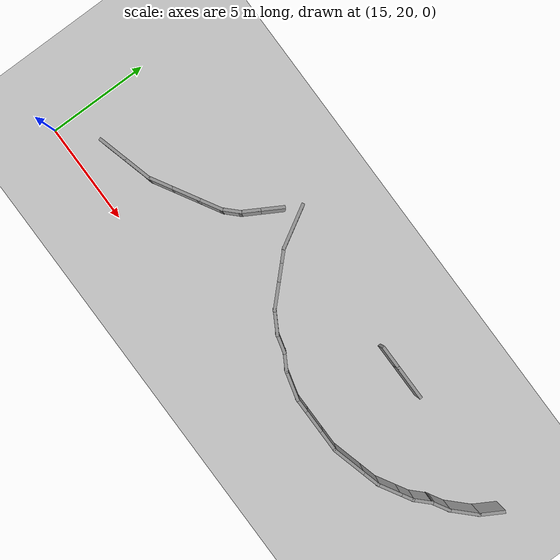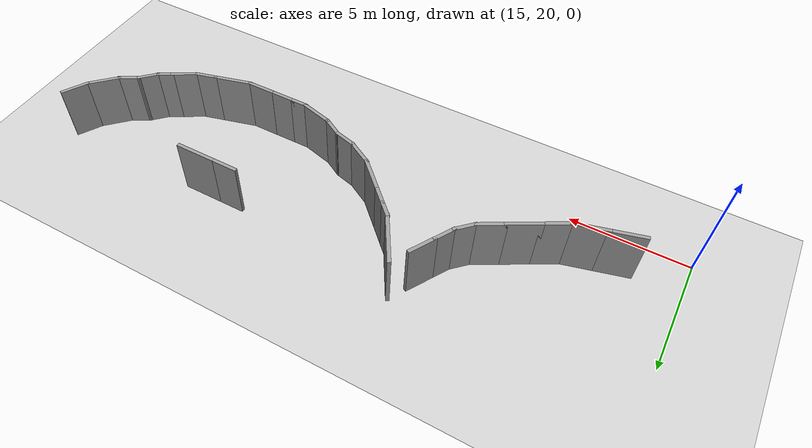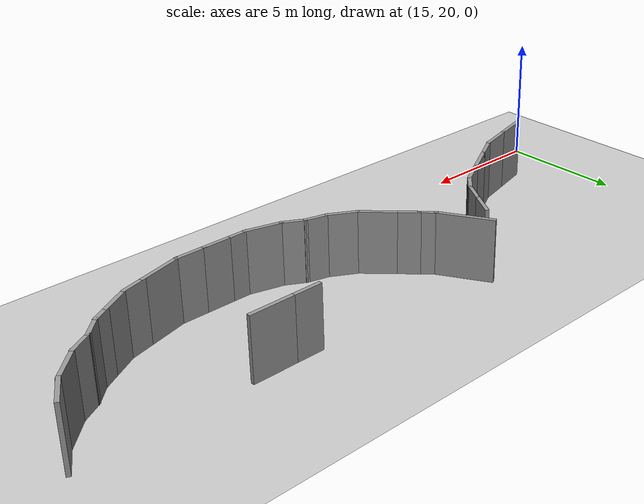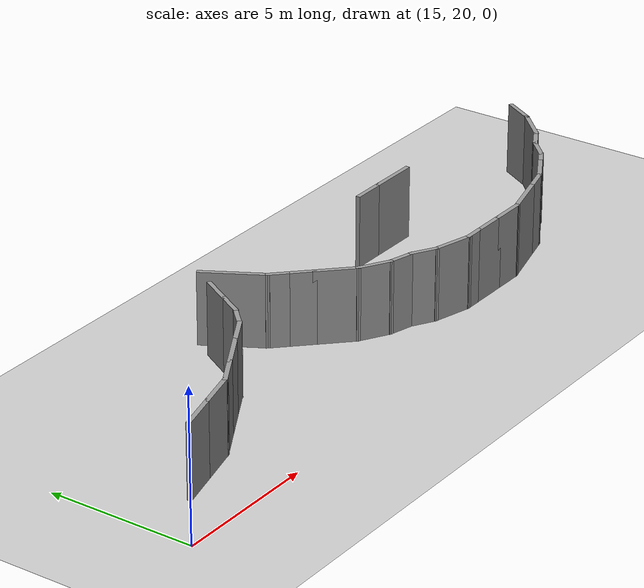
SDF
<sdf version="1.7">
 <world name="default">
  <model name="ground_plane">
   <static>1</static>
   <link name="link">
    <collision name="collision">
     <geometry><plane><normal>0 0 1</normal><size>100 100</size></plane></geometry>
     <surface><friction><ode><mu>100</mu><mu2>50</mu2></ode></friction></surface>
    </collision>
    <visual name="visual">
     <cast_shadows>0</cast_shadows>
     <geometry><plane><normal>0 0 1</normal><size>100 100</size></plane></geometry>
     <material>
      <script><uri>file://media/materials/scripts/gazebo.material</uri><name>Gazebo/Grey</name></script>
     </material>
    </visual>
   </link>
  </model>
  <model name="map4-otto">
   <pose>24.785 39.2572 0 0 -0 0</pose>
   <link name="Wall_170">
    <collision name="Wall_170_Collision">
     <geometry><box><size>1.5 0.15 2.5</size></box></geometry>
     <pose>0 0 1.25 0 -0 0</pose>
    </collision>
    <visual name="Wall_170_Visual">
     <pose>0 0 1.25 0 -0 0</pose>
     <geometry><box><size>1.5 0.15 2.5</size></box></geometry>
     <material>
      <script><uri>file://media/materials/scripts/gazebo.material</uri><name>Gazebo/Grey</name></script>
      <ambient>1 1 1 1</ambient>
     </material>
     <meta><layer>0</layer></meta>
    </visual>
    <pose>-7.12523 -17.5057 0 0 -0 0.261799</pose>
   </link>
   <link name="Wall_171">
    <collision name="Wall_171_Collision">
     <geometry><box><size>1.5 0.15 2.5</size></box></geometry>
     <pose>0 0 1.25 0 -0 0</pose>
    </collision>
    <visual name="Wall_171_Visual">
     <pose>0 0 1.25 0 -0 0</pose>
     <geometry><box><size>1.5 0.15 2.5</size></box></geometry>
     <material>
      <script><uri>file://media/materials/scripts/gazebo.material</uri><name>Gazebo/Grey</name></script>
      <ambient>1 1 1 1</ambient>
     </material>
     <meta><layer>0</layer></meta>
    </visual>
    <pose>-5.82123 -17.1563 0 0 -0 0.261799</pose>
   </link>
   <link name="Wall_172">
    <collision name="Wall_172_Collision">
     <geometry><box><size>1.25 0.15 2.5</size></box></geometry>
     <pose>0 0 1.25 0 -0 0</pose>
    </collision>
    <visual name="Wall_172_Visual">
     <pose>0 0 1.25 0 -0 0</pose>
     <geometry><box><size>1.25 0.15 2.5</size></box></geometry>
     <material>
      <script><uri>file://media/materials/scripts/gazebo.material</uri><name>Gazebo/Grey</name></script>
      <ambient>1 1 1 1</ambient>
     </material>
     <meta><layer>0</layer></meta>
    </visual>
    <pose>-4.69291 -16.7066 0 0 -0 0.523599</pose>
   </link>
   <link name="Wall_173">
    <collision name="Wall_173_Collision">
     <geometry><box><size>1.5 0.15 2.5</size></box></geometry>
     <pose>0 0 1.25 0 -0 0</pose>
    </collision>
    <visual name="Wall_173_Visual">
     <pose>0 0 1.25 0 -0 0</pose>
     <geometry><box><size>1.5 0.15 2.5</size></box></geometry>
     <material>
      <script><uri>file://media/materials/scripts/gazebo.material</uri><name>Gazebo/Grey</name></script>
      <ambient>1 1 1 1</ambient>
     </material>
     <meta><layer>0</layer></meta>
    </visual>
    <pose>-3.63203 -16.0941 0 0 -0 0.523599</pose>
   </link>
   <link name="Wall_174">
    <collision name="Wall_174_Collision">
     <geometry><box><size>1.25 0.15 2.5</size></box></geometry>
     <pose>0 0 1.25 0 -0 0</pose>
    </collision>
    <visual name="Wall_174_Visual">
     <pose>0 0 1.25 0 -0 0</pose>
     <geometry><box><size>1.25 0.15 2.5</size></box></geometry>
     <material>
      <script><uri>file://media/materials/scripts/gazebo.material</uri><name>Gazebo/Grey</name></script>
      <ambient>1 1 1 1</ambient>
     </material>
     <meta><layer>0</layer></meta>
    </visual>
    <pose>-2.57115 -15.4816 0 0 -0 0.523599</pose>
   </link>
   <link name="Wall_175">
    <collision name="Wall_175_Collision">
     <geometry><box><size>1 0.15 2.5</size></box></geometry>
     <pose>0 0 1.25 0 -0 0</pose>
    </collision>
    <visual name="Wall_175_Visual">
     <pose>0 0 1.25 0 -0 0</pose>
     <geometry><box><size>1 0.15 2.5</size></box></geometry>
     <material>
      <script><uri>file://media/materials/scripts/gazebo.material</uri><name>Gazebo/Grey</name></script>
      <ambient>1 1 1 1</ambient>
     </material>
     <meta><layer>0</layer></meta>
    </visual>
    <pose>-1.79432 -14.9061 0 0 -0 0.785398</pose>
   </link>
   <link name="Wall_176">
    <collision name="Wall_176_Collision">
     <geometry><box><size>1 0.15 2.5</size></box></geometry>
     <pose>0 0 1.25 0 -0 0</pose>
    </collision>
    <visual name="Wall_176_Visual">
     <pose>0 0 1.25 0 -0 0</pose>
     <geometry><box><size>1 0.15 2.5</size></box></geometry>
     <material>
      <script><uri>file://media/materials/scripts/gazebo.material</uri><name>Gazebo/Grey</name></script>
      <ambient>1 1 1 1</ambient>
     </material>
     <meta><layer>0</layer></meta>
    </visual>
    <pose>-1.2813 -14.2375 0 0 -0 1.0472</pose>
   </link>
   <link name="Wall_177">
    <collision name="Wall_177_Collision">
     <geometry><box><size>1.25 0.15 2.5</size></box></geometry>
     <pose>0 0 1.25 0 -0 0</pose>
    </collision>
    <visual name="Wall_177_Visual">
     <pose>0 0 1.25 0 -0 0</pose>
     <geometry><box><size>1.25 0.15 2.5</size></box></geometry>
     <material>
      <script><uri>file://media/materials/scripts/gazebo.material</uri><name>Gazebo/Grey</name></script>
      <ambient>1 1 1 1</ambient>
     </material>
     <meta><layer>0</layer></meta>
    </visual>
    <pose>-0.793797 -13.3931 0 0 -0 1.0472</pose>
   </link>
   <link name="Wall_179">
    <collision name="Wall_179_Collision">
     <geometry><box><size>2.25 0.15 2.5</size></box></geometry>
     <pose>0 0 1.25 0 -0 0</pose>
    </collision>
    <visual name="Wall_179_Visual">
     <pose>0 0 1.25 0 -0 0</pose>
     <geometry><box><size>2.25 0.15 2.5</size></box></geometry>
     <material>
      <script><uri>file://media/materials/scripts/gazebo.material</uri><name>Gazebo/Grey</name></script>
      <ambient>1 1 1 1</ambient>
     </material>
     <meta><layer>0</layer></meta>
    </visual>
    <pose>0.431202 -13.09 0 0 -0 -1.0472</pose>
   </link>
   <link name="Wall_180">
    <collision name="Wall_180_Collision">
     <geometry><box><size>0.75 0.15 2.5</size></box></geometry>
     <pose>0 0 1.25 0 -0 0</pose>
    </collision>
    <visual name="Wall_180_Visual">
     <pose>0 0 1.25 0 -0 0</pose>
     <geometry><box><size>0.75 0.15 2.5</size></box></geometry>
     <material>
      <script><uri>file://media/materials/scripts/gazebo.material</uri><name>Gazebo/Grey</name></script>
      <ambient>1 1 1 1</ambient>
     </material>
     <meta><layer>0</layer></meta>
    </visual>
    <pose>1.16833 -14.2115 0 0 -0 -0.785398</pose>
   </link>
   <link name="Wall_181">
    <collision name="Wall_181_Collision">
     <geometry><box><size>1 0.15 2.5</size></box></geometry>
     <pose>0 0 1.25 0 -0 0</pose>
    </collision>
    <visual name="Wall_181_Visual">
     <pose>0 0 1.25 0 -0 0</pose>
     <geometry><box><size>1 0.15 2.5</size></box></geometry>
     <material>
      <script><uri>file://media/materials/scripts/gazebo.material</uri><name>Gazebo/Grey</name></script>
      <ambient>1 1 1 1</ambient>
     </material>
     <meta><layer>0</layer></meta>
    </visual>
    <pose>1.68099 -14.7241 0 0 -0 -0.785398</pose>
   </link>
   <link name="Wall_182">
    <collision name="Wall_182_Collision">
     <geometry><box><size>1.5 0.15 2.5</size></box></geometry>
     <pose>0 0 1.25 0 -0 0</pose>
    </collision>
    <visual name="Wall_182_Visual">
     <pose>0 0 1.25 0 -0 0</pose>
     <geometry><box><size>1.5 0.15 2.5</size></box></geometry>
     <material>
      <script><uri>file://media/materials/scripts/gazebo.material</uri><name>Gazebo/Grey</name></script>
      <ambient>1 1 1 1</ambient>
     </material>
     <meta><layer>0</layer></meta>
    </visual>
    <pose>2.4588 -15.5019 0 0 -0 -0.785398</pose>
   </link>
   <link name="Wall_183">
    <collision name="Wall_183_Collision">
     <geometry><box><size>1.25 0.15 2.5</size></box></geometry>
     <pose>0 0 1.25 0 -0 0</pose>
    </collision>
    <visual name="Wall_183_Visual">
     <pose>0 0 1.25 0 -0 0</pose>
     <geometry><box><size>1.25 0.15 2.5</size></box></geometry>
     <material>
      <script><uri>file://media/materials/scripts/gazebo.material</uri><name>Gazebo/Grey</name></script>
      <ambient>1 1 1 1</ambient>
     </material>
     <meta><layer>0</layer></meta>
    </visual>
    <pose>3.41242 -16.2542 0 0 -0 -0.523599</pose>
   </link>
   <link name="Wall_184">
    <collision name="Wall_184_Collision">
     <geometry><box><size>1 0.15 2.5</size></box></geometry>
     <pose>0 0 1.25 0 -0 0</pose>
    </collision>
    <visual name="Wall_184_Visual">
     <pose>0 0 1.25 0 -0 0</pose>
     <geometry><box><size>1 0.15 2.5</size></box></geometry>
     <material>
      <script><uri>file://media/materials/scripts/gazebo.material</uri><name>Gazebo/Grey</name></script>
      <ambient>1 1 1 1</ambient>
     </material>
     <meta><layer>0</layer></meta>
    </visual>
    <pose>4.29925 -16.6392 0 0 -0 -0.261799</pose>
   </link>
   <link name="Wall_185">
    <collision name="Wall_185_Collision">
     <geometry><box><size>1 0.15 2.5</size></box></geometry>
     <pose>0 0 1.25 0 -0 0</pose>
    </collision>
    <visual name="Wall_185_Visual">
     <pose>0 0 1.25 0 -0 0</pose>
     <geometry><box><size>1 0.15 2.5</size></box></geometry>
     <material>
      <script><uri>file://media/materials/scripts/gazebo.material</uri><name>Gazebo/Grey</name></script>
      <ambient>1 1 1 1</ambient>
     </material>
     <meta><layer>0</layer></meta>
    </visual>
    <pose>5.07783 -16.9617 0 0 -0 -0.523599</pose>
   </link>
   <link name="Wall_186">
    <collision name="Wall_186_Collision">
     <geometry><box><size>1.5 0.15 2.5</size></box></geometry>
     <pose>0 0 1.25 0 -0 0</pose>
    </collision>
    <visual name="Wall_186_Visual">
     <pose>0 0 1.25 0 -0 0</pose>
     <geometry><box><size>1.5 0.15 2.5</size></box></geometry>
     <material>
      <script><uri>file://media/materials/scripts/gazebo.material</uri><name>Gazebo/Grey</name></script>
      <ambient>1 1 1 1</ambient>
     </material>
     <meta><layer>0</layer></meta>
    </visual>
    <pose>6.09789 -17.3489 0 0 -0 -0.261799</pose>
   </link>
   <link name="Wall_187">
    <collision name="Wall_187_Collision">
     <geometry><box><size>0.75 0.15 2.5</size></box></geometry>
     <pose>0 0 1.25 0 -0 0</pose>
    </collision>
    <visual name="Wall_187_Visual">
     <pose>0 0 1.25 0 -0 0</pose>
     <geometry><box><size>0.75 0.15 2.5</size></box></geometry>
     <material>
      <script><uri>file://media/materials/scripts/gazebo.material</uri><name>Gazebo/Grey</name></script>
      <ambient>1 1 1 1</ambient>
     </material>
     <meta><layer>0</layer></meta>
    </visual>
    <pose>7.04989 -17.5236 0 0 -0 0</pose>
   </link>
   <link name="Wall_188">
    <collision name="Wall_188_Collision">
     <geometry><box><size>1.25 0.15 2.5</size></box></geometry>
     <pose>0 0 1.25 0 -0 0</pose>
    </collision>
    <visual name="Wall_188_Visual">
     <pose>0 0 1.25 0 -0 0</pose>
     <geometry><box><size>1.25 0.15 2.5</size></box></geometry>
     <material>
      <script><uri>file://media/materials/scripts/gazebo.material</uri><name>Gazebo/Grey</name></script>
      <ambient>1 1 1 1</ambient>
     </material>
     <meta><layer>0</layer></meta>
    </visual>
    <pose>7.89989 -17.5236 0 0 -0 0</pose>
   </link>
   <link name="Wall_189">
    <collision name="Wall_189_Collision">
     <geometry><box><size>1.25 0.15 2.5</size></box></geometry>
     <pose>0 0 1.25 0 -0 0</pose>
    </collision>
    <visual name="Wall_189_Visual">
     <pose>0 0 1.25 0 -0 0</pose>
     <geometry><box><size>1.25 0.15 2.5</size></box></geometry>
     <material>
      <script><uri>file://media/materials/scripts/gazebo.material</uri><name>Gazebo/Grey</name></script>
      <ambient>1 1 1 1</ambient>
     </material>
     <meta><layer>0</layer></meta>
    </visual>
    <pose>8.99989 -17.5236 0 0 -0 0</pose>
   </link>
   <link name="Wall_190">
    <collision name="Wall_190_Collision">
     <geometry><box><size>1.75 0.15 2.5</size></box></geometry>
     <pose>0 0 1.25 0 -0 0</pose>
    </collision>
    <visual name="Wall_190_Visual">
     <pose>0 0 1.25 0 -0 0</pose>
     <geometry><box><size>1.75 0.15 2.5</size></box></geometry>
     <material>
      <script><uri>file://media/materials/scripts/gazebo.material</uri><name>Gazebo/Grey</name></script>
      <ambient>1 1 1 1</ambient>
     </material>
     <meta><layer>0</layer></meta>
    </visual>
    <pose>10.3226 -17.3166 0 0 -0 0.261799</pose>
   </link>
   <link name="Wall_191">
    <collision name="Wall_191_Collision">
     <geometry><box><size>1 0.15 2.5</size></box></geometry>
     <pose>0 0 1.25 0 -0 0</pose>
    </collision>
    <visual name="Wall_191_Visual">
     <pose>0 0 1.25 0 -0 0</pose>
     <geometry><box><size>1 0.15 2.5</size></box></geometry>
     <material>
      <script><uri>file://media/materials/scripts/gazebo.material</uri><name>Gazebo/Grey</name></script>
      <ambient>1 1 1 1</ambient>
     </material>
     <meta><layer>0</layer></meta>
    </visual>
    <pose>11.5059 -16.9995 0 0 -0 0.261799</pose>
   </link>
   <link name="Wall_192">
    <collision name="Wall_192_Collision">
     <geometry><box><size>1.25 0.15 2.5</size></box></geometry>
     <pose>0 0 1.25 0 -0 0</pose>
    </collision>
    <visual name="Wall_192_Visual">
     <pose>0 0 1.25 0 -0 0</pose>
     <geometry><box><size>1.25 0.15 2.5</size></box></geometry>
     <material>
      <script><uri>file://media/materials/scripts/gazebo.material</uri><name>Gazebo/Grey</name></script>
      <ambient>1 1 1 1</ambient>
     </material>
     <meta><layer>0</layer></meta>
    </visual>
    <pose>12.3927 -16.6145 0 0 -0 0.523599</pose>
   </link>
   <link name="Wall_193">
    <collision name="Wall_193_Collision">
     <geometry><box><size>0.75 0.15 2.5</size></box></geometry>
     <pose>0 0 1.25 0 -0 0</pose>
    </collision>
    <visual name="Wall_193_Visual">
     <pose>0 0 1.25 0 -0 0</pose>
     <geometry><box><size>0.75 0.15 2.5</size></box></geometry>
     <material>
      <script><uri>file://media/materials/scripts/gazebo.material</uri><name>Gazebo/Grey</name></script>
      <ambient>1 1 1 1</ambient>
     </material>
     <meta><layer>0</layer></meta>
    </visual>
    <pose>13.1288 -16.1895 0 0 -0 0.523599</pose>
   </link>
   <link name="Wall_194">
    <collision name="Wall_194_Collision">
     <geometry><box><size>1 0.15 2.5</size></box></geometry>
     <pose>0 0 1.25 0 -0 0</pose>
    </collision>
    <visual name="Wall_194_Visual">
     <pose>0 0 1.25 0 -0 0</pose>
     <geometry><box><size>1 0.15 2.5</size></box></geometry>
     <material>
      <script><uri>file://media/materials/scripts/gazebo.material</uri><name>Gazebo/Grey</name></script>
      <ambient>1 1 1 1</ambient>
     </material>
     <meta><layer>0</layer></meta>
    </visual>
    <pose>13.6892 -15.739 0 0 -0 0.785398</pose>
   </link>
   <link name="Wall_195">
    <collision name="Wall_195_Collision">
     <geometry><box><size>1 0.15 2.5</size></box></geometry>
     <pose>0 0 1.25 0 -0 0</pose>
    </collision>
    <visual name="Wall_195_Visual">
     <pose>0 0 1.25 0 -0 0</pose>
     <geometry><box><size>1 0.15 2.5</size></box></geometry>
     <material>
      <script><uri>file://media/materials/scripts/gazebo.material</uri><name>Gazebo/Grey</name></script>
      <ambient>1 1 1 1</ambient>
     </material>
     <meta><layer>0</layer></meta>
    </visual>
    <pose>14.3578 -15.226 0 0 -0 0.523599</pose>
   </link>
   <link name="Wall_196">
    <collision name="Wall_196_Collision">
     <geometry><box><size>1.5 0.15 2.5</size></box></geometry>
     <pose>0 0 1.25 0 -0 0</pose>
    </collision>
    <visual name="Wall_196_Visual">
     <pose>0 0 1.25 0 -0 0</pose>
     <geometry><box><size>1.5 0.15 2.5</size></box></geometry>
     <material>
      <script><uri>file://media/materials/scripts/gazebo.material</uri><name>Gazebo/Grey</name></script>
      <ambient>1 1 1 1</ambient>
     </material>
     <meta><layer>0</layer></meta>
    </visual>
    <pose>15.2031 -14.5362 0 0 -0 0.785398</pose>
   </link>
   <link name="Wall_197">
    <collision name="Wall_197_Collision">
     <geometry><box><size>1.25 0.15 2.5</size></box></geometry>
     <pose>0 0 1.25 0 -0 0</pose>
    </collision>
    <visual name="Wall_197_Visual">
     <pose>0 0 1.25 0 -0 0</pose>
     <geometry><box><size>1.25 0.15 2.5</size></box></geometry>
     <material>
      <script><uri>file://media/materials/scripts/gazebo.material</uri><name>Gazebo/Grey</name></script>
      <ambient>1 1 1 1</ambient>
     </material>
     <meta><layer>0</layer></meta>
    </visual>
    <pose>15.9554 -13.5826 0 0 -0 1.0472</pose>
   </link>
   <link name="Wall_86">
    <collision name="Wall_86_Collision">
     <geometry><box><size>1.25 0.15 2.5</size></box></geometry>
     <pose>0 0 1.25 0 -0 0</pose>
    </collision>
    <visual name="Wall_86_Visual">
     <pose>0 0 1.25 0 -0 0</pose>
     <geometry><box><size>1.25 0.15 2.5</size></box></geometry>
     <material>
      <script><uri>file://media/materials/scripts/gazebo.material</uri><name>Gazebo/Grey</name></script>
      <ambient>1 1 1 1</ambient>
     </material>
     <meta><layer>0</layer></meta>
    </visual>
    <pose>7.75546 -13.0604 0 0 -0 0</pose>
   </link>
   <link name="Wall_87">
    <collision name="Wall_87_Collision">
     <geometry><box><size>1.75 0.15 2.5</size></box></geometry>
     <pose>0 0 1.25 0 -0 0</pose>
    </collision>
    <visual name="Wall_87_Visual">
     <pose>0 0 1.25 0 -0 0</pose>
     <geometry><box><size>1.75 0.15 2.5</size></box></geometry>
     <material>
      <script><uri>file://media/materials/scripts/gazebo.material</uri><name>Gazebo/Grey</name></script>
      <ambient>1 1 1 1</ambient>
     </material>
     <meta><layer>0</layer></meta>
    </visual>
    <pose>9.10546 -13.0604 0 0 -0 0</pose>
   </link>
   <static>1</static>
  </model>
 </world>
</sdf>
